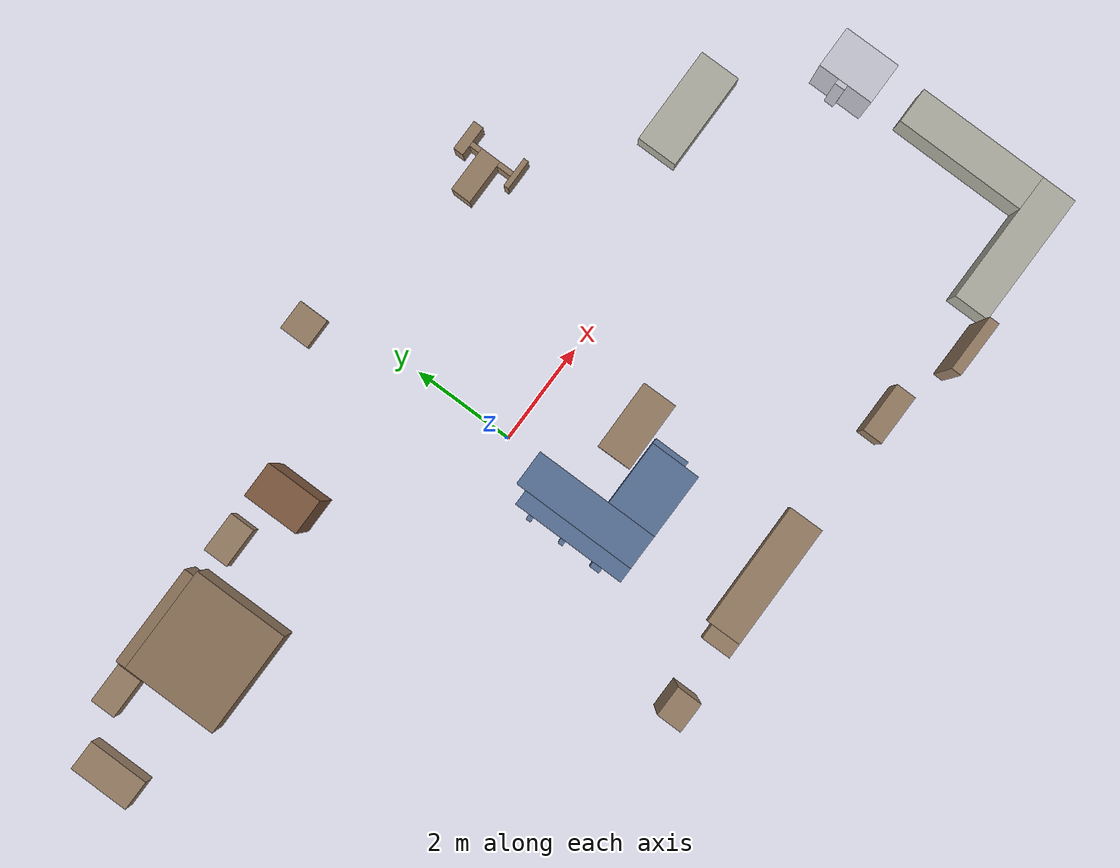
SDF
<sdf version="1.8">
 <world name="small_house_lite">
  <physics name="1ms" type="ignored">
   <max_step_size>0.003</max_step_size>
   <real_time_factor>1.0</real_time_factor>
  </physics>
  <plugin name="ignition::gazebo::systems::Physics" filename="ignition-gazebo-physics-system"/>
  <plugin name="ignition::gazebo::systems::UserCommands" filename="ignition-gazebo-user-commands-system"/>
  <plugin name="ignition::gazebo::systems::SceneBroadcaster" filename="ignition-gazebo-scene-broadcaster-system"/>
  <plugin name="ignition::gazebo::systems::Contact" filename="ignition-gazebo-contact-system"/>
  <gravity>0 0 -9.8</gravity>
  <scene><ambient>0.6 0.6 0.6 1</ambient><background>0.7 0.7 0.7 1</background><shadows>false</shadows></scene>
  <light type="directional" name="sun">
   <cast_shadows>false</cast_shadows>
   <pose>0 0 10 0 0 0</pose>
   <diffuse>0.8 0.8 0.8 1</diffuse>
   <specular>0.2 0.2 0.2 1</specular>
   <direction>-0.3 0.2 -1</direction>
  </light>
  <model name="ground_plane">
   <static>true</static>
   <link name="link">
    <collision name="collision">
     <pose>0 0 -0.05 0 0 0</pose>
     <geometry><plane><normal>0 0 1</normal><size>60 60</size></plane></geometry>
    </collision>
   </link>
  </model>
  <model name="AirconditionerB_01_001_0">
   <static>true</static>
   <pose>-1.9583 -5.1823 1.0148 0 0 0.0000</pose>
   <link name="link">
    <collision name="collision"><geometry><box><size>0.600 0.500 2.023</size></box></geometry></collision>
    <visual name="visual">
     <geometry><box><size>0.600 0.500 2.023</size></box></geometry>
     <material><ambient>0.6 0.5 0.4 1</ambient><diffuse>0.6 0.5 0.4 1</diffuse></material>
    </visual>
   </link>
  </model>
  <model name="Bed_01_001_0">
   <static>true</static>
   <pose>-6.1348 1.9783 0.6409 0 0 0.0000</pose>
   <link name="link">
    <collision name="collision"><geometry><box><size>2.100 1.900 1.282</size></box></geometry></collision>
    <visual name="visual">
     <geometry><box><size>2.100 1.900 1.282</size></box></geometry>
     <material><ambient>0.55 0.45 0.35 1</ambient><diffuse>0.55 0.45 0.35 1</diffuse></material>
    </visual>
   </link>
  </model>
  <model name="Bed_01_001_1">
   <static>true</static>
   <pose>-6.1848 3.0283 0.6409 0 0 0.0000</pose>
   <link name="link">
    <collision name="collision"><geometry><box><size>2.000 0.200 1.282</size></box></geometry></collision>
    <visual name="visual">
     <geometry><box><size>2.000 0.200 1.282</size></box></geometry>
     <material><ambient>0.55 0.45 0.35 1</ambient><diffuse>0.55 0.45 0.35 1</diffuse></material>
    </visual>
   </link>
  </model>
  <model name="NightStand_01_001_0">
   <static>true</static>
   <pose>-7.6959 2.8709 0.3488 0 0 0.0000</pose>
   <link name="link">
    <collision name="collision"><geometry><box><size>0.800 0.500 0.687</size></box></geometry></collision>
    <visual name="visual">
     <geometry><box><size>0.800 0.500 0.687</size></box></geometry>
     <material><ambient>0.6 0.5 0.4 1</ambient><diffuse>0.6 0.5 0.4 1</diffuse></material>
    </visual>
   </link>
  </model>
  <model name="NightStand_01_002_0">
   <static>true</static>
   <pose>-4.3778 2.8709 0.3488 0 0 0.0000</pose>
   <link name="link">
    <collision name="collision"><geometry><box><size>0.800 0.500 0.687</size></box></geometry></collision>
    <visual name="visual">
     <geometry><box><size>0.800 0.500 0.687</size></box></geometry>
     <material><ambient>0.6 0.5 0.4 1</ambient><diffuse>0.6 0.5 0.4 1</diffuse></material>
    </visual>
   </link>
  </model>
  <model name="CoffeeTable_01_001_0">
   <static>true</static>
   <pose>1.5550 -1.7125 0.2039 0 0 0.0100</pose>
   <link name="link">
    <collision name="collision"><geometry><box><size>1.400 0.700 0.324</size></box></geometry></collision>
    <visual name="visual">
     <geometry><box><size>1.400 0.700 0.324</size></box></geometry>
     <material><ambient>0.6 0.5 0.4 1</ambient><diffuse>0.6 0.5 0.4 1</diffuse></material>
    </visual>
   </link>
  </model>
  <model name="KitchenTable_01_001_0">
   <static>true</static>
   <pose>6.5927 0.9120 0.4092 0 0 -1.5641</pose>
   <link name="link">
    <collision name="collision"><geometry><box><size>0.800 1.900 0.818</size></box></geometry></collision>
    <visual name="visual">
     <geometry><box><size>0.800 1.900 0.818</size></box></geometry>
     <material><ambient>0.7 0.7 0.65 1</ambient><diffuse>0.7 0.7 0.65 1</diffuse></material>
    </visual>
   </link>
  </model>
  <model name="ReadingDesk_01_001_0">
   <static>true</static>
   <pose>-8.9562 2.0806 0.3718 0 0 -0.0046</pose>
   <link name="link">
    <collision name="collision"><geometry><box><size>0.600 1.200 0.744</size></box></geometry></collision>
    <visual name="visual">
     <geometry><box><size>0.600 1.200 0.744</size></box></geometry>
     <material><ambient>0.6 0.5 0.4 1</ambient><diffuse>0.6 0.5 0.4 1</diffuse></material>
    </visual>
   </link>
  </model>
  <model name="BalconyTable_01_001_0">
   <static>true</static>
   <pose>-0.5368 4.1277 0.2014 0 0 0.0000</pose>
   <link name="link">
    <collision name="collision"><geometry><box><size>0.600 0.600 0.403</size></box></geometry></collision>
    <visual name="visual">
     <geometry><box><size>0.600 0.600 0.403</size></box></geometry>
     <material><ambient>0.6 0.5 0.4 1</ambient><diffuse>0.6 0.5 0.4 1</diffuse></material>
    </visual>
   </link>
  </model>
  <model name="Door_01_001_0">
   <static>true</static>
   <pose>6.0485 -5.5256 1.1135 0 0 0.0000</pose>
   <link name="link">
    <collision name="collision"><geometry><box><size>1.100 0.200 2.227</size></box></geometry></collision>
    <visual name="visual">
     <geometry><box><size>1.100 0.200 2.227</size></box></geometry>
     <material><ambient>0.6 0.5 0.4 1</ambient><diffuse>0.6 0.5 0.4 1</diffuse></material>
    </visual>
   </link>
  </model>
  <model name="FitnessEquipment_01_001_0">
   <static>true</static>
   <pose>3.8387 2.6620 0.4499 0 0 0.0000</pose>
   <link name="link">
    <collision name="collision"><geometry><box><size>0.600 0.100 0.894</size></box></geometry></collision>
    <visual name="visual">
     <geometry><box><size>0.600 0.100 0.894</size></box></geometry>
     <material><ambient>0.6 0.5 0.4 1</ambient><diffuse>0.6 0.5 0.4 1</diffuse></material>
    </visual>
   </link>
  </model>
  <model name="FitnessEquipment_01_001_1">
   <static>true</static>
   <pose>3.7887 2.8620 0.4499 0 0 0.0000</pose>
   <link name="link">
    <collision name="collision"><geometry><box><size>0.100 0.300 0.894</size></box></geometry></collision>
    <visual name="visual">
     <geometry><box><size>0.100 0.300 0.894</size></box></geometry>
     <material><ambient>0.6 0.5 0.4 1</ambient><diffuse>0.6 0.5 0.4 1</diffuse></material>
    </visual>
   </link>
  </model>
  <model name="FitnessEquipment_01_001_2">
   <static>true</static>
   <pose>3.3887 3.2120 0.4499 0 0 0.0000</pose>
   <link name="link">
    <collision name="collision"><geometry><box><size>0.900 0.400 0.894</size></box></geometry></collision>
    <visual name="visual">
     <geometry><box><size>0.900 0.400 0.894</size></box></geometry>
     <material><ambient>0.6 0.5 0.4 1</ambient><diffuse>0.6 0.5 0.4 1</diffuse></material>
    </visual>
   </link>
  </model>
  <model name="FitnessEquipment_01_001_3">
   <static>true</static>
   <pose>3.7887 3.5120 0.4499 0 0 0.0000</pose>
   <link name="link">
    <collision name="collision"><geometry><box><size>0.100 0.200 0.894</size></box></geometry></collision>
    <visual name="visual">
     <geometry><box><size>0.100 0.200 0.894</size></box></geometry>
     <material><ambient>0.6 0.5 0.4 1</ambient><diffuse>0.6 0.5 0.4 1</diffuse></material>
    </visual>
   </link>
  </model>
  <model name="FitnessEquipment_01_001_4">
   <static>true</static>
   <pose>3.8387 3.7120 0.4499 0 0 0.0000</pose>
   <link name="link">
    <collision name="collision"><geometry><box><size>0.600 0.200 0.894</size></box></geometry></collision>
    <visual name="visual">
     <geometry><box><size>0.600 0.200 0.894</size></box></geometry>
     <material><ambient>0.6 0.5 0.4 1</ambient><diffuse>0.6 0.5 0.4 1</diffuse></material>
    </visual>
   </link>
  </model>
  <model name="KitchenCabinet_01_001_0">
   <static>true</static>
   <pose>8.9426 -3.5196 0.5809 0 0 -3.1400</pose>
   <link name="link">
    <collision name="collision"><geometry><box><size>0.700 2.600 1.138</size></box></geometry></collision>
    <visual name="visual">
     <geometry><box><size>0.700 2.600 1.138</size></box></geometry>
     <material><ambient>0.7 0.7 0.65 1</ambient><diffuse>0.7 0.7 0.65 1</diffuse></material>
    </visual>
   </link>
  </model>
  <model name="KitchenCabinet_01_001_1">
   <static>true</static>
   <pose>7.9953 -5.1711 0.5809 0 0 -3.1400</pose>
   <link name="link">
    <collision name="collision"><geometry><box><size>2.600 0.700 1.138</size></box></geometry></collision>
    <visual name="visual">
     <geometry><box><size>2.600 0.700 1.138</size></box></geometry>
     <material><ambient>0.7 0.7 0.65 1</ambient><diffuse>0.7 0.7 0.65 1</diffuse></material>
    </visual>
   </link>
  </model>
  <model name="Refrigerator_01_001_0">
   <static>true</static>
   <pose>8.3324 -1.0130 0.9803 0 0 -1.5635</pose>
   <link name="link">
    <collision name="collision"><geometry><box><size>0.200 0.100 1.961</size></box></geometry></collision>
    <visual name="visual">
     <geometry><box><size>0.200 0.100 1.961</size></box></geometry>
     <material><ambient>0.8 0.8 0.85 1</ambient><diffuse>0.8 0.8 0.85 1</diffuse></material>
    </visual>
   </link>
  </model>
  <model name="Refrigerator_01_001_1">
   <static>true</static>
   <pose>8.7827 -1.0597 0.9803 0 0 -1.5635</pose>
   <link name="link">
    <collision name="collision"><geometry><box><size>1.100 0.800 1.961</size></box></geometry></collision>
    <visual name="visual">
     <geometry><box><size>1.100 0.800 1.961</size></box></geometry>
     <material><ambient>0.8 0.8 0.85 1</ambient><diffuse>0.8 0.8 0.85 1</diffuse></material>
    </visual>
   </link>
  </model>
  <model name="ShoeRack_01_001_0">
   <static>true</static>
   <pose>4.3432 -5.1276 0.5715 0 0 0.0000</pose>
   <link name="link">
    <collision name="collision"><geometry><box><size>1.000 0.400 1.143</size></box></geometry></collision>
    <visual name="visual">
     <geometry><box><size>1.000 0.400 1.143</size></box></geometry>
     <material><ambient>0.6 0.5 0.4 1</ambient><diffuse>0.6 0.5 0.4 1</diffuse></material>
    </visual>
   </link>
  </model>
  <model name="SofaC_01_001_0">
   <static>true</static>
   <pose>1.5127 -2.4639 0.5520 0 0 1.5717</pose>
   <link name="link">
    <collision name="collision"><geometry><box><size>0.700 0.100 0.972</size></box></geometry></collision>
    <visual name="visual">
     <geometry><box><size>0.700 0.100 0.972</size></box></geometry>
     <material><ambient>0.35 0.45 0.6 1</ambient><diffuse>0.35 0.45 0.6 1</diffuse></material>
    </visual>
   </link>
  </model>
  <model name="SofaC_01_001_1">
   <static>true</static>
   <pose>0.8128 -2.6145 0.5520 0 0 1.5717</pose>
   <link name="link">
    <collision name="collision"><geometry><box><size>1.000 1.300 0.972</size></box></geometry></collision>
    <visual name="visual">
     <geometry><box><size>1.000 1.300 0.972</size></box></geometry>
     <material><ambient>0.35 0.45 0.6 1</ambient><diffuse>0.35 0.45 0.6 1</diffuse></material>
    </visual>
   </link>
  </model>
  <model name="SofaC_01_001_2">
   <static>true</static>
   <pose>-0.1879 -1.8655 0.5520 0 0 1.5717</pose>
   <link name="link">
    <collision name="collision"><geometry><box><size>2.500 0.700 0.972</size></box></geometry></collision>
    <visual name="visual">
     <geometry><box><size>2.500 0.700 0.972</size></box></geometry>
     <material><ambient>0.35 0.45 0.6 1</ambient><diffuse>0.35 0.45 0.6 1</diffuse></material>
    </visual>
   </link>
  </model>
  <model name="SofaC_01_001_3">
   <static>true</static>
   <pose>-0.6878 -1.9659 0.5520 0 0 1.5717</pose>
   <link name="link">
    <collision name="collision"><geometry><box><size>2.300 0.300 0.972</size></box></geometry></collision>
    <visual name="visual">
     <geometry><box><size>2.300 0.300 0.972</size></box></geometry>
     <material><ambient>0.35 0.45 0.6 1</ambient><diffuse>0.35 0.45 0.6 1</diffuse></material>
    </visual>
   </link>
  </model>
  <model name="SofaC_01_001_4">
   <static>true</static>
   <pose>-0.8872 -2.6161 0.5520 0 0 1.5717</pose>
   <link name="link">
    <collision name="collision"><geometry><box><size>0.200 0.100 0.972</size></box></geometry></collision>
    <visual name="visual">
     <geometry><box><size>0.200 0.100 0.972</size></box></geometry>
     <material><ambient>0.35 0.45 0.6 1</ambient><diffuse>0.35 0.45 0.6 1</diffuse></material>
    </visual>
   </link>
  </model>
  <model name="SofaC_01_001_5">
   <static>true</static>
   <pose>-0.8879 -1.8661 0.5520 0 0 1.5717</pose>
   <link name="link">
    <collision name="collision"><geometry><box><size>0.100 0.100 0.972</size></box></geometry></collision>
    <visual name="visual">
     <geometry><box><size>0.100 0.100 0.972</size></box></geometry>
     <material><ambient>0.35 0.45 0.6 1</ambient><diffuse>0.35 0.45 0.6 1</diffuse></material>
    </visual>
   </link>
  </model>
  <model name="SofaC_01_001_6">
   <static>true</static>
   <pose>-0.8885 -1.1661 0.5520 0 0 1.5717</pose>
   <link name="link">
    <collision name="collision"><geometry><box><size>0.100 0.100 0.972</size></box></geometry></collision>
    <visual name="visual">
     <geometry><box><size>0.100 0.100 0.972</size></box></geometry>
     <material><ambient>0.35 0.45 0.6 1</ambient><diffuse>0.35 0.45 0.6 1</diffuse></material>
    </visual>
   </link>
  </model>
  <model name="TVCabinet_01_001_0">
   <static>true</static>
   <pose>0.7761 -5.1239 0.2375 0 0 1.5792</pose>
   <link name="link">
    <collision name="collision"><geometry><box><size>0.700 2.500 0.509</size></box></geometry></collision>
    <visual name="visual">
     <geometry><box><size>0.700 2.500 0.509</size></box></geometry>
     <material><ambient>0.6 0.5 0.4 1</ambient><diffuse>0.6 0.5 0.4 1</diffuse></material>
    </visual>
   </link>
  </model>
  <model name="TVCabinet_01_001_1">
   <static>true</static>
   <pose>-0.6235 -5.1856 0.2375 0 0 1.5792</pose>
   <link name="link">
    <collision name="collision"><geometry><box><size>0.600 0.300 0.509</size></box></geometry></collision>
    <visual name="visual">
     <geometry><box><size>0.600 0.300 0.509</size></box></geometry>
     <material><ambient>0.6 0.5 0.4 1</ambient><diffuse>0.6 0.5 0.4 1</diffuse></material>
    </visual>
   </link>
  </model>
  <model name="Wardrobe_01_001_0">
   <static>true</static>
   <pose>-3.1190 2.4278 1.0730 0 0 -1.5697</pose>
   <link name="link">
    <collision name="collision"><geometry><box><size>1.100 0.700 2.145</size></box></geometry></collision>
    <visual name="visual">
     <geometry><box><size>1.100 0.700 2.145</size></box></geometry>
     <material><ambient>0.5 0.35 0.25 1</ambient><diffuse>0.5 0.35 0.25 1</diffuse></material>
    </visual>
   </link>
  </model>
 </world>
</sdf>
